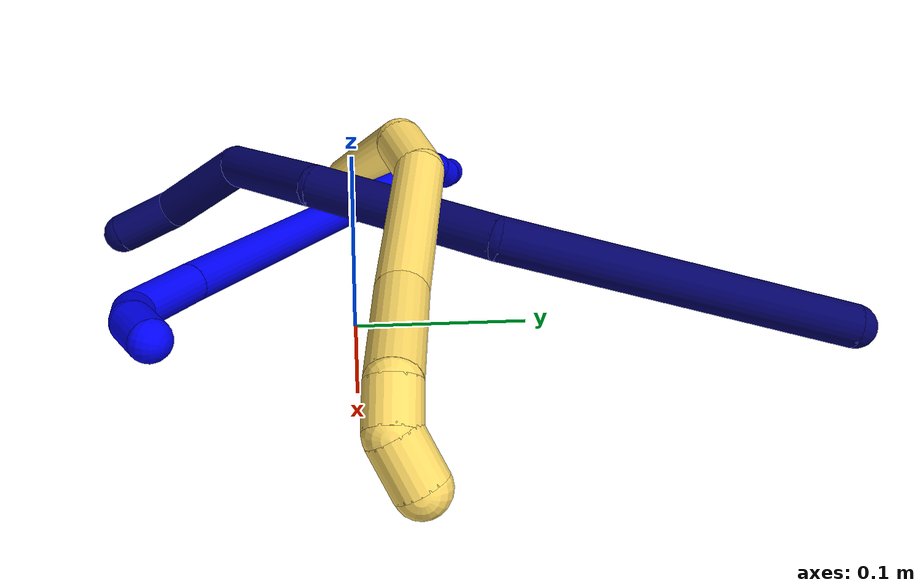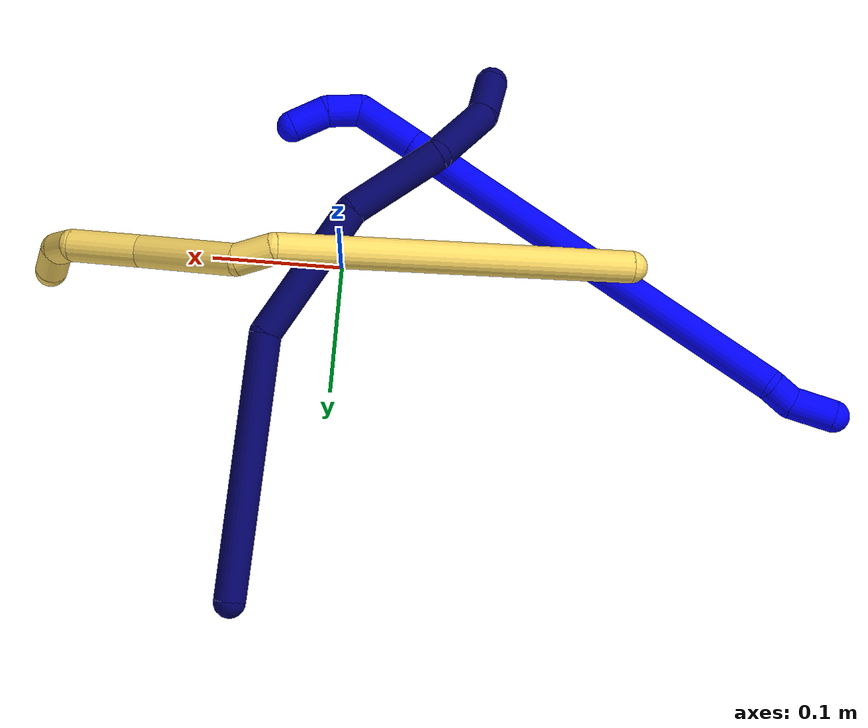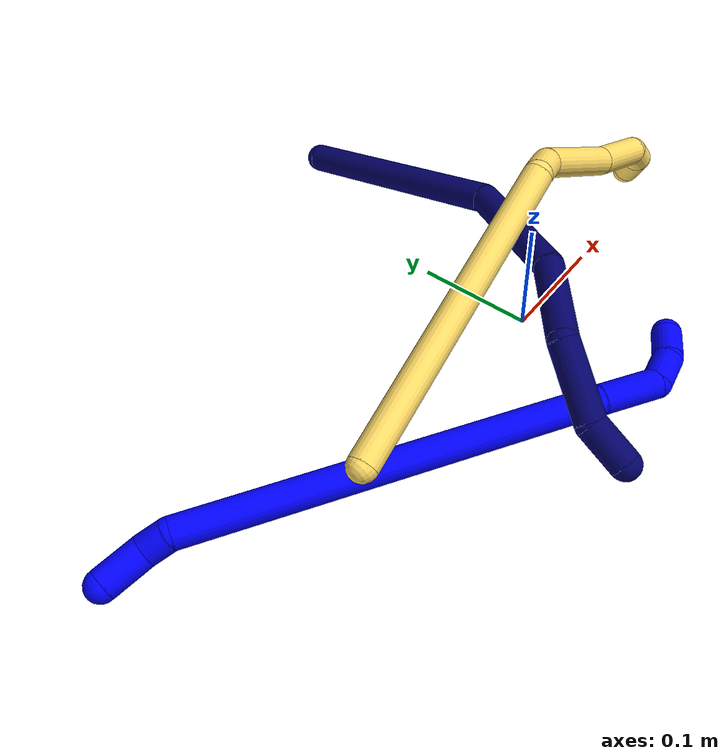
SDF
<sdf version="1.7">
 <world name="default">
  <model name="photoneo_s_sensor">
   <static>1</static>
   <pose>0 0 2 1.57079 1.57079 3.14159</pose>
   <link name="link">
    <inertial><mass>0.1</mass></inertial>
    <sensor name="sensor" type="depth">
     <update_rate>30</update_rate>
     <camera>
      <horizontal_fov>1.22</horizontal_fov>
      <image><width>1920</width><height>1200</height><format>B8G8R8</format></image>
      <clip><near>0.1</near><far>4</far></clip>
      <depth_camera><output>points</output></depth_camera>
     </camera>
     <plugin name="camera_plugin" filename="libgazebo_ros_depth_camera.so">
      <baseline>0.2</baseline>
      <alwaysOn>1</alwaysOn>
      <updateRate>0.0</updateRate>
      <cameraName>camera_ir</cameraName>
      <imageTopicName>/camera/color/image_raw</imageTopicName>
      <cameraInfoTopicName>/camera/color/camera_info</cameraInfoTopicName>
      <depthImageTopicName>/camera/depth/image_raw</depthImageTopicName>
      <depthImageCameraInfoTopicName>/camera/depth/camera_info</depthImageCameraInfoTopicName>
      <pointCloudTopicName>/camera/depth/points</pointCloudTopicName>
      <frameName>fr_optical</frameName>
      <pointCloudCutoff>0.1</pointCloudCutoff>
      <pointCloudCutoffMax>2.0</pointCloudCutoffMax>
      <distortionK1>0</distortionK1>
      <distortionK2>0</distortionK2>
      <distortionK3>0</distortionK3>
      <distortionT1>0</distortionT1>
      <distortionT2>0</distortionT2>
      <CxPrime>0</CxPrime>
      <Cx>0</Cx>
      <Cy>0</Cy>
      <focalLength>0</focalLength>
      <hackBaseline>0</hackBaseline>
     </plugin>
    </sensor>
   </link>
  </model>
  <model name="bin">
   <static>1</static>
   <link name="bottom">
    <collision name="collision-bottom">
     <pose>0 0 -0.01 0 -0 0</pose>
     <geometry><box><size>0.8 0.6 0.02</size></box></geometry>
     <surface>
      <friction><ode><mu>100</mu><mu2>100</mu2></ode></friction>
      <contact><collide_bitmask>65535</collide_bitmask></contact>
     </surface>
    </collision>
   </link>
   <link name="west_wall">
    <collision name="collision-west_wall">
     <pose>-0.41 0 0.1 0 -0 0</pose>
     <geometry><box><size>0.02 0.6 0.2</size></box></geometry>
     <surface>
      <friction><ode><mu>100</mu><mu2>100</mu2></ode></friction>
      <contact><collide_bitmask>65535</collide_bitmask></contact>
     </surface>
    </collision>
   </link>
   <link name="east_wall">
    <collision name="collision-east_wall">
     <pose>0.41 0 0.1 0 -0 0</pose>
     <geometry><box><size>0.02 0.6 0.2</size></box></geometry>
     <surface>
      <friction><ode><mu>100</mu><mu2>100</mu2></ode></friction>
      <contact><collide_bitmask>65535</collide_bitmask></contact>
     </surface>
    </collision>
   </link>
   <link name="south_wall">
    <collision name="collision-south_wall">
     <pose>0 -0.31 0.1 0 -0 0</pose>
     <geometry><box><size>0.8 0.02 0.2</size></box></geometry>
     <surface>
      <friction><ode><mu>100</mu><mu2>100</mu2></ode></friction>
      <contact><collide_bitmask>65535</collide_bitmask></contact>
     </surface>
    </collision>
   </link>
   <link name="north_wall">
    <collision name="collision-north_wall">
     <pose>0 0.31 0.1 0 -0 0</pose>
     <geometry><box><size>0.8 0.02 0.2</size></box></geometry>
     <surface>
      <friction><ode><mu>100</mu><mu2>100</mu2></ode></friction>
      <contact><collide_bitmask>65535</collide_bitmask></contact>
     </surface>
    </collision>
   </link>
  </model>
  <model name="1">
   <static>0</static>
   <link name="1">
    <collision name="collision-cylinder-e_1_1_4">
     <pose>-0.006791 0.004312 0.011949 -0.346343 -0.490933 0.087587</pose>
     <geometry><cylinder><radius>0.0125</radius><length>0.02881</length></cylinder></geometry>
     <surface>
      <friction><ode><mu>1.16</mu><mu2>1.16</mu2><slip1>0</slip1><slip2>0</slip2></ode></friction>
      <contact><ode><kp>1e+06</kp><kd>1</kd><max_vel>0</max_vel><min_depth>0.001</min_depth></ode></contact>
     </surface>
    </collision>
    <visual name="visual-cylinder-e_1_1_4">
     <pose>-0.006791 0.004312 0.011949 -0.346343 -0.490933 0.087587</pose>
     <geometry><cylinder><radius>0.0125</radius><length>0.02881</length></cylinder></geometry>
     <material><ambient>0 0 1 1</ambient></material>
    </visual>
    <collision name="collision-cylinder-e_2_4_5">
     <pose>-0.023801 0.013118 0.031541 -0.531467 -0.856198 0.247129</pose>
     <geometry><cylinder><radius>0.0125</radius><length>0.027055</length></cylinder></geometry>
     <surface>
      <friction><ode><mu>1.16</mu><mu2>1.16</mu2><slip1>0</slip1><slip2>0</slip2></ode></friction>
      <contact><ode><kp>1e+06</kp><kd>1</kd><max_vel>0</max_vel><min_depth>0.001</min_depth></ode></contact>
     </surface>
    </collision>
    <visual name="visual-cylinder-e_2_4_5">
     <pose>-0.023801 0.013118 0.031541 -0.531467 -0.856198 0.247129</pose>
     <geometry><cylinder><radius>0.0125</radius><length>0.027055</length></cylinder></geometry>
     <material><ambient>0 0 1 1</ambient></material>
    </visual>
    <collision name="collision-cylinder-e_3_5_6">
     <pose>-0.05311 0.034346 0.037773 -1.65483 -0.849306 0.914219</pose>
     <geometry><cylinder><radius>0.0125</radius><length>0.050854</length></cylinder></geometry>
     <surface>
      <friction><ode><mu>1.16</mu><mu2>1.16</mu2><slip1>0</slip1><slip2>0</slip2></ode></friction>
      <contact><ode><kp>1e+06</kp><kd>1</kd><max_vel>0</max_vel><min_depth>0.001</min_depth></ode></contact>
     </surface>
    </collision>
    <visual name="visual-cylinder-e_3_5_6">
     <pose>-0.05311 0.034346 0.037773 -1.65483 -0.849306 0.914219</pose>
     <geometry><cylinder><radius>0.0125</radius><length>0.050854</length></cylinder></geometry>
     <material><ambient>0 0 1 1</ambient></material>
    </visual>
    <collision name="collision-cylinder-e_4_6_7">
     <pose>-0.200667 0.159422 0.026115 -1.66511 -0.867985 0.942236</pose>
     <geometry><cylinder><radius>0.0125</radius><length>0.336727</length></cylinder></geometry>
     <surface>
      <friction><ode><mu>1.16</mu><mu2>1.16</mu2><slip1>0</slip1><slip2>0</slip2></ode></friction>
      <contact><ode><kp>1e+06</kp><kd>1</kd><max_vel>0</max_vel><min_depth>0.001</min_depth></ode></contact>
     </surface>
    </collision>
    <visual name="visual-cylinder-e_4_6_7">
     <pose>-0.200667 0.159422 0.026115 -1.66511 -0.867985 0.942236</pose>
     <geometry><cylinder><radius>0.0125</radius><length>0.336727</length></cylinder></geometry>
     <material><ambient>0 0 1 1</ambient></material>
    </visual>
    <collision name="collision-cylinder-e_5_7_8">
     <pose>-0.339546 0.269917 0.014636 -2.0896 -1.33692 1.8738</pose>
     <geometry><cylinder><radius>0.0125</radius><length>0.021408</length></cylinder></geometry>
     <surface>
      <friction><ode><mu>1.16</mu><mu2>1.16</mu2><slip1>0</slip1><slip2>0</slip2></ode></friction>
      <contact><ode><kp>1e+06</kp><kd>1</kd><max_vel>0</max_vel><min_depth>0.001</min_depth></ode></contact>
     </surface>
    </collision>
    <visual name="visual-cylinder-e_5_7_8">
     <pose>-0.339546 0.269917 0.014636 -2.0896 -1.33692 1.8738</pose>
     <geometry><cylinder><radius>0.0125</radius><length>0.021408</length></cylinder></geometry>
     <material><ambient>0 0 1 1</ambient></material>
    </visual>
    <collision name="collision-cylinder-e_6_8_2">
     <pose>-0.365245 0.279529 0.017823 -1.03611 -1.05496 0.641168</pose>
     <geometry><cylinder><radius>0.0125</radius><length>0.035146</length></cylinder></geometry>
     <surface>
      <friction><ode><mu>1.16</mu><mu2>1.16</mu2><slip1>0</slip1><slip2>0</slip2></ode></friction>
      <contact><ode><kp>1e+06</kp><kd>1</kd><max_vel>0</max_vel><min_depth>0.001</min_depth></ode></contact>
     </surface>
    </collision>
    <visual name="visual-cylinder-e_6_8_2">
     <pose>-0.365245 0.279529 0.017823 -1.03611 -1.05496 0.641168</pose>
     <geometry><cylinder><radius>0.0125</radius><length>0.035146</length></cylinder></geometry>
     <material><ambient>0 0 1 1</ambient></material>
    </visual>
    <collision name="collision-sphere-2">
     <pose>-0.380531 0.286987 0.02224 0 -0 0</pose>
     <geometry><sphere><radius>0.0125</radius></sphere></geometry>
     <surface>
      <friction><ode><mu>1.16</mu><mu2>1.16</mu2><slip1>0</slip1><slip2>0</slip2></ode></friction>
      <contact><ode><kp>1e+06</kp><kd>1</kd><max_vel>0</max_vel><min_depth>0.001</min_depth></ode></contact>
     </surface>
    </collision>
    <visual name="visual-sphere-2">
     <pose>-0.380531 0.286987 0.02224 0 -0 0</pose>
     <geometry><sphere><radius>0.0125</radius></sphere></geometry>
     <material><ambient>0 0 1 1</ambient></material>
    </visual>
    <collision name="collision-sphere-4">
     <pose>-0.013582 0.008625 0.023899 0 -0 0</pose>
     <geometry><sphere><radius>0.0125</radius></sphere></geometry>
     <surface>
      <friction><ode><mu>1.16</mu><mu2>1.16</mu2><slip1>0</slip1><slip2>0</slip2></ode></friction>
      <contact><ode><kp>1e+06</kp><kd>1</kd><max_vel>0</max_vel><min_depth>0.001</min_depth></ode></contact>
     </surface>
    </collision>
    <visual name="visual-sphere-4">
     <pose>-0.013582 0.008625 0.023899 0 -0 0</pose>
     <geometry><sphere><radius>0.0125</radius></sphere></geometry>
     <material><ambient>0 0 1 1</ambient></material>
    </visual>
    <collision name="collision-sphere-1">
     <geometry><sphere><radius>0.0125</radius></sphere></geometry>
     <surface>
      <friction><ode><mu>1.16</mu><mu2>1.16</mu2><slip1>0</slip1><slip2>0</slip2></ode></friction>
      <contact><ode><kp>1e+06</kp><kd>1</kd><max_vel>0</max_vel><min_depth>0.001</min_depth></ode></contact>
     </surface>
    </collision>
    <visual name="visual-sphere-1">
     <geometry><sphere><radius>0.0125</radius></sphere></geometry>
     <material><ambient>0 0 1 1</ambient></material>
    </visual>
    <collision name="collision-sphere-8">
     <pose>-0.349958 0.272071 0.013406 0 -0 0</pose>
     <geometry><sphere><radius>0.0125</radius></sphere></geometry>
     <surface>
      <friction><ode><mu>1.16</mu><mu2>1.16</mu2><slip1>0</slip1><slip2>0</slip2></ode></friction>
      <contact><ode><kp>1e+06</kp><kd>1</kd><max_vel>0</max_vel><min_depth>0.001</min_depth></ode></contact>
     </surface>
    </collision>
    <visual name="visual-sphere-8">
     <pose>-0.349958 0.272071 0.013406 0 -0 0</pose>
     <geometry><sphere><radius>0.0125</radius></sphere></geometry>
     <material><ambient>0 0 1 1</ambient></material>
    </visual>
    <collision name="collision-sphere-5">
     <pose>-0.034019 0.01761 0.039183 0 -0 0</pose>
     <geometry><sphere><radius>0.0125</radius></sphere></geometry>
     <surface>
      <friction><ode><mu>1.16</mu><mu2>1.16</mu2><slip1>0</slip1><slip2>0</slip2></ode></friction>
      <contact><ode><kp>1e+06</kp><kd>1</kd><max_vel>0</max_vel><min_depth>0.001</min_depth></ode></contact>
     </surface>
    </collision>
    <visual name="visual-sphere-5">
     <pose>-0.034019 0.01761 0.039183 0 -0 0</pose>
     <geometry><sphere><radius>0.0125</radius></sphere></geometry>
     <material><ambient>0 0 1 1</ambient></material>
    </visual>
    <collision name="collision-sphere-6">
     <pose>-0.072201 0.051081 0.036364 0 -0 0</pose>
     <geometry><sphere><radius>0.0125</radius></sphere></geometry>
     <surface>
      <friction><ode><mu>1.16</mu><mu2>1.16</mu2><slip1>0</slip1><slip2>0</slip2></ode></friction>
      <contact><ode><kp>1e+06</kp><kd>1</kd><max_vel>0</max_vel><min_depth>0.001</min_depth></ode></contact>
     </surface>
    </collision>
    <visual name="visual-sphere-6">
     <pose>-0.072201 0.051081 0.036364 0 -0 0</pose>
     <geometry><sphere><radius>0.0125</radius></sphere></geometry>
     <material><ambient>0 0 1 1</ambient></material>
    </visual>
    <collision name="collision-sphere-7">
     <pose>-0.329133 0.267763 0.015866 0 -0 0</pose>
     <geometry><sphere><radius>0.0125</radius></sphere></geometry>
     <surface>
      <friction><ode><mu>1.16</mu><mu2>1.16</mu2><slip1>0</slip1><slip2>0</slip2></ode></friction>
      <contact><ode><kp>1e+06</kp><kd>1</kd><max_vel>0</max_vel><min_depth>0.001</min_depth></ode></contact>
     </surface>
    </collision>
    <visual name="visual-sphere-7">
     <pose>-0.329133 0.267763 0.015866 0 -0 0</pose>
     <geometry><sphere><radius>0.0125</radius></sphere></geometry>
     <material><ambient>0 0 1 1</ambient></material>
    </visual>
    <inertial>
     <pose>-0.182433 0.14302 0.025704 0 -0 0</pose>
     <mass>0.5</mass>
     <inertia>
      <ixx>0.002876</ixx>
      <ixy>0</ixy>
      <ixz>0</ixz>
      <iyy>0.003507</iyy>
      <iyz>0</iyz>
      <izz>0.00039</izz>
     </inertia>
    </inertial>
   </link>
   <pose>0.047899 -0.108608 0.012496 1.39109 -0.645417 -0.367622</pose>
  </model>
  <model name="5">
   <static>0</static>
   <link name="5">
    <collision name="collision-cylinder-e_1_1_4">
     <pose>0.02386 0.016144 0.136829 -0.117444 0.171479 -0.010106</pose>
     <geometry><cylinder><radius>0.0125</radius><length>0.279658</length></cylinder></geometry>
     <surface>
      <friction><ode><mu>1.16</mu><mu2>1.16</mu2><slip1>0</slip1><slip2>0</slip2></ode></friction>
      <contact><ode><kp>1e+06</kp><kd>1</kd><max_vel>0</max_vel><min_depth>0.001</min_depth></ode></contact>
     </surface>
    </collision>
    <visual name="visual-cylinder-e_1_1_4">
     <pose>0.02386 0.016144 0.136829 -0.117444 0.171479 -0.010106</pose>
     <geometry><cylinder><radius>0.0125</radius><length>0.279658</length></cylinder></geometry>
     <material><ambient>1 0.858824 0.4 1</ambient></material>
    </visual>
    <collision name="collision-cylinder-e_2_4_5">
     <pose>0.054915 0.026688 0.28618 0.420558 0.483008 0.105046</pose>
     <geometry><cylinder><radius>0.0125</radius><length>0.03098</length></cylinder></geometry>
     <surface>
      <friction><ode><mu>1.16</mu><mu2>1.16</mu2><slip1>0</slip1><slip2>0</slip2></ode></friction>
      <contact><ode><kp>1e+06</kp><kd>1</kd><max_vel>0</max_vel><min_depth>0.001</min_depth></ode></contact>
     </surface>
    </collision>
    <visual name="visual-cylinder-e_2_4_5">
     <pose>0.054915 0.026688 0.28618 0.420558 0.483008 0.105046</pose>
     <geometry><cylinder><radius>0.0125</radius><length>0.03098</length></cylinder></geometry>
     <material><ambient>1 0.858824 0.4 1</ambient></material>
    </visual>
    <collision name="collision-cylinder-e_3_5_6">
     <pose>0.066588 -0.005251 0.332342 0.664266 0.104445 0.036053</pose>
     <geometry><cylinder><radius>0.0125</radius><length>0.085916</length></cylinder></geometry>
     <surface>
      <friction><ode><mu>1.16</mu><mu2>1.16</mu2><slip1>0</slip1><slip2>0</slip2></ode></friction>
      <contact><ode><kp>1e+06</kp><kd>1</kd><max_vel>0</max_vel><min_depth>0.001</min_depth></ode></contact>
     </surface>
    </collision>
    <visual name="visual-cylinder-e_3_5_6">
     <pose>0.066588 -0.005251 0.332342 0.664266 0.104445 0.036053</pose>
     <geometry><cylinder><radius>0.0125</radius><length>0.085916</length></cylinder></geometry>
     <material><ambient>1 0.858824 0.4 1</ambient></material>
    </visual>
    <collision name="collision-cylinder-e_4_6_7">
     <pose>0.074585 -0.045836 0.391056 0.516699 0.121412 0.03212</pose>
     <geometry><cylinder><radius>0.0125</radius><length>0.058105</length></cylinder></geometry>
     <surface>
      <friction><ode><mu>1.16</mu><mu2>1.16</mu2><slip1>0</slip1><slip2>0</slip2></ode></friction>
      <contact><ode><kp>1e+06</kp><kd>1</kd><max_vel>0</max_vel><min_depth>0.001</min_depth></ode></contact>
     </surface>
    </collision>
    <visual name="visual-cylinder-e_4_6_7">
     <pose>0.074585 -0.045836 0.391056 0.516699 0.121412 0.03212</pose>
     <geometry><cylinder><radius>0.0125</radius><length>0.058105</length></cylinder></geometry>
     <material><ambient>1 0.858824 0.4 1</ambient></material>
    </visual>
    <collision name="collision-cylinder-e_5_7_8">
     <pose>0.080757 -0.068933 0.421131 1.05641 0.25531 0.149511</pose>
     <geometry><cylinder><radius>0.0125</radius><length>0.021012</length></cylinder></geometry>
     <surface>
      <friction><ode><mu>1.16</mu><mu2>1.16</mu2><slip1>0</slip1><slip2>0</slip2></ode></friction>
      <contact><ode><kp>1e+06</kp><kd>1</kd><max_vel>0</max_vel><min_depth>0.001</min_depth></ode></contact>
     </surface>
    </collision>
    <visual name="visual-cylinder-e_5_7_8">
     <pose>0.080757 -0.068933 0.421131 1.05641 0.25531 0.149511</pose>
     <geometry><cylinder><radius>0.0125</radius><length>0.021012</length></cylinder></geometry>
     <material><ambient>1 0.858824 0.4 1</ambient></material>
    </visual>
    <collision name="collision-cylinder-e_6_8_2">
     <pose>0.091893 -0.086497 0.425834 1.60495 0.771643 0.795757</pose>
     <geometry><cylinder><radius>0.0125</radius><length>0.02433</length></cylinder></geometry>
     <surface>
      <friction><ode><mu>1.16</mu><mu2>1.16</mu2><slip1>0</slip1><slip2>0</slip2></ode></friction>
      <contact><ode><kp>1e+06</kp><kd>1</kd><max_vel>0</max_vel><min_depth>0.001</min_depth></ode></contact>
     </surface>
    </collision>
    <visual name="visual-cylinder-e_6_8_2">
     <pose>0.091893 -0.086497 0.425834 1.60495 0.771643 0.795757</pose>
     <geometry><cylinder><radius>0.0125</radius><length>0.02433</length></cylinder></geometry>
     <material><ambient>1 0.858824 0.4 1</ambient></material>
    </visual>
    <collision name="collision-sphere-2">
     <pose>0.100376 -0.095212 0.425537 0 -0 0</pose>
     <geometry><sphere><radius>0.0125</radius></sphere></geometry>
     <surface>
      <friction><ode><mu>1.16</mu><mu2>1.16</mu2><slip1>0</slip1><slip2>0</slip2></ode></friction>
      <contact><ode><kp>1e+06</kp><kd>1</kd><max_vel>0</max_vel><min_depth>0.001</min_depth></ode></contact>
     </surface>
    </collision>
    <visual name="visual-sphere-2">
     <pose>0.100376 -0.095212 0.425537 0 -0 0</pose>
     <geometry><sphere><radius>0.0125</radius></sphere></geometry>
     <material><ambient>1 0.858824 0.4 1</ambient></material>
    </visual>
    <collision name="collision-sphere-4">
     <pose>0.047721 0.032288 0.273658 0 -0 0</pose>
     <geometry><sphere><radius>0.0125</radius></sphere></geometry>
     <surface>
      <friction><ode><mu>1.16</mu><mu2>1.16</mu2><slip1>0</slip1><slip2>0</slip2></ode></friction>
      <contact><ode><kp>1e+06</kp><kd>1</kd><max_vel>0</max_vel><min_depth>0.001</min_depth></ode></contact>
     </surface>
    </collision>
    <visual name="visual-sphere-4">
     <pose>0.047721 0.032288 0.273658 0 -0 0</pose>
     <geometry><sphere><radius>0.0125</radius></sphere></geometry>
     <material><ambient>1 0.858824 0.4 1</ambient></material>
    </visual>
    <collision name="collision-sphere-1">
     <geometry><sphere><radius>0.0125</radius></sphere></geometry>
     <surface>
      <friction><ode><mu>1.16</mu><mu2>1.16</mu2><slip1>0</slip1><slip2>0</slip2></ode></friction>
      <contact><ode><kp>1e+06</kp><kd>1</kd><max_vel>0</max_vel><min_depth>0.001</min_depth></ode></contact>
     </surface>
    </collision>
    <visual name="visual-sphere-1">
     <geometry><sphere><radius>0.0125</radius></sphere></geometry>
     <material><ambient>1 0.858824 0.4 1</ambient></material>
    </visual>
    <collision name="collision-sphere-8">
     <pose>0.08341 -0.077783 0.426132 0 -0 0</pose>
     <geometry><sphere><radius>0.0125</radius></sphere></geometry>
     <surface>
      <friction><ode><mu>1.16</mu><mu2>1.16</mu2><slip1>0</slip1><slip2>0</slip2></ode></friction>
      <contact><ode><kp>1e+06</kp><kd>1</kd><max_vel>0</max_vel><min_depth>0.001</min_depth></ode></contact>
     </surface>
    </collision>
    <visual name="visual-sphere-8">
     <pose>0.08341 -0.077783 0.426132 0 -0 0</pose>
     <geometry><sphere><radius>0.0125</radius></sphere></geometry>
     <material><ambient>1 0.858824 0.4 1</ambient></material>
    </visual>
    <collision name="collision-sphere-5">
     <pose>0.062109 0.021087 0.298703 0 -0 0</pose>
     <geometry><sphere><radius>0.0125</radius></sphere></geometry>
     <surface>
      <friction><ode><mu>1.16</mu><mu2>1.16</mu2><slip1>0</slip1><slip2>0</slip2></ode></friction>
      <contact><ode><kp>1e+06</kp><kd>1</kd><max_vel>0</max_vel><min_depth>0.001</min_depth></ode></contact>
     </surface>
    </collision>
    <visual name="visual-sphere-5">
     <pose>0.062109 0.021087 0.298703 0 -0 0</pose>
     <geometry><sphere><radius>0.0125</radius></sphere></geometry>
     <material><ambient>1 0.858824 0.4 1</ambient></material>
    </visual>
    <collision name="collision-sphere-6">
     <pose>0.071066 -0.03159 0.365982 0 -0 0</pose>
     <geometry><sphere><radius>0.0125</radius></sphere></geometry>
     <surface>
      <friction><ode><mu>1.16</mu><mu2>1.16</mu2><slip1>0</slip1><slip2>0</slip2></ode></friction>
      <contact><ode><kp>1e+06</kp><kd>1</kd><max_vel>0</max_vel><min_depth>0.001</min_depth></ode></contact>
     </surface>
    </collision>
    <visual name="visual-sphere-6">
     <pose>0.071066 -0.03159 0.365982 0 -0 0</pose>
     <geometry><sphere><radius>0.0125</radius></sphere></geometry>
     <material><ambient>1 0.858824 0.4 1</ambient></material>
    </visual>
    <collision name="collision-sphere-7">
     <pose>0.078104 -0.060083 0.41613 0 -0 0</pose>
     <geometry><sphere><radius>0.0125</radius></sphere></geometry>
     <surface>
      <friction><ode><mu>1.16</mu><mu2>1.16</mu2><slip1>0</slip1><slip2>0</slip2></ode></friction>
      <contact><ode><kp>1e+06</kp><kd>1</kd><max_vel>0</max_vel><min_depth>0.001</min_depth></ode></contact>
     </surface>
    </collision>
    <visual name="visual-sphere-7">
     <pose>0.078104 -0.060083 0.41613 0 -0 0</pose>
     <geometry><sphere><radius>0.0125</radius></sphere></geometry>
     <material><ambient>1 0.858824 0.4 1</ambient></material>
    </visual>
    <inertial>
     <pose>0.044723 -0.002652 0.235232 0 -0 0</pose>
     <mass>0.5</mass>
     <inertia>
      <ixx>0.001881</ixx>
      <ixy>0</ixy>
      <ixz>0</ixz>
      <iyy>0.001866</iyy>
      <iyz>0</iyz>
      <izz>-0.000455</izz>
     </inertia>
    </inertial>
   </link>
   <pose>-0.222734 -0.005731 0.045037 1.36444 0.28035 1.42372</pose>
  </model>
  <model name="7">
   <static>0</static>
   <link name="7">
    <collision name="collision-cylinder-e_1_1_4">
     <pose>0.00428 0.017289 0.005911 -1.24138 0.230113 -0.164875</pose>
     <geometry><cylinder><radius>0.0125</radius><length>0.037533</length></cylinder></geometry>
     <surface>
      <friction><ode><mu>1.16</mu><mu2>1.16</mu2><slip1>0</slip1><slip2>0</slip2></ode></friction>
      <contact><ode><kp>1e+06</kp><kd>1</kd><max_vel>0</max_vel><min_depth>0.001</min_depth></ode></contact>
     </surface>
    </collision>
    <visual name="visual-cylinder-e_1_1_4">
     <pose>0.00428 0.017289 0.005911 -1.24138 0.230113 -0.164875</pose>
     <geometry><cylinder><radius>0.0125</radius><length>0.037533</length></cylinder></geometry>
     <material><ambient>0.003922 0 0.403922 1</ambient></material>
    </visual>
    <collision name="collision-cylinder-e_2_4_5">
     <pose>0.026312 0.061152 0.014838 -1.45776 0.585974 -0.52623</pose>
     <geometry><cylinder><radius>0.0125</radius><length>0.0642</length></cylinder></geometry>
     <surface>
      <friction><ode><mu>1.16</mu><mu2>1.16</mu2><slip1>0</slip1><slip2>0</slip2></ode></friction>
      <contact><ode><kp>1e+06</kp><kd>1</kd><max_vel>0</max_vel><min_depth>0.001</min_depth></ode></contact>
     </surface>
    </collision>
    <visual name="visual-cylinder-e_2_4_5">
     <pose>0.026312 0.061152 0.014838 -1.45776 0.585974 -0.52623</pose>
     <geometry><cylinder><radius>0.0125</radius><length>0.0642</length></cylinder></geometry>
     <material><ambient>0.003922 0 0.403922 1</ambient></material>
    </visual>
    <collision name="collision-cylinder-e_3_5_6">
     <pose>0.059372 0.118261 -0.001607 -2.13825 0.399969 -0.707984</pose>
     <geometry><cylinder><radius>0.0125</radius><length>0.078626</length></cylinder></geometry>
     <surface>
      <friction><ode><mu>1.16</mu><mu2>1.16</mu2><slip1>0</slip1><slip2>0</slip2></ode></friction>
      <contact><ode><kp>1e+06</kp><kd>1</kd><max_vel>0</max_vel><min_depth>0.001</min_depth></ode></contact>
     </surface>
    </collision>
    <visual name="visual-cylinder-e_3_5_6">
     <pose>0.059372 0.118261 -0.001607 -2.13825 0.399969 -0.707984</pose>
     <geometry><cylinder><radius>0.0125</radius><length>0.078626</length></cylinder></geometry>
     <material><ambient>0.003922 0 0.403922 1</ambient></material>
    </visual>
    <collision name="collision-cylinder-e_4_6_7">
     <pose>0.077722 0.201832 -0.042673 -1.9576 0.053074 -0.078903</pose>
     <geometry><cylinder><radius>0.0125</radius><length>0.114695</length></cylinder></geometry>
     <surface>
      <friction><ode><mu>1.16</mu><mu2>1.16</mu2><slip1>0</slip1><slip2>0</slip2></ode></friction>
      <contact><ode><kp>1e+06</kp><kd>1</kd><max_vel>0</max_vel><min_depth>0.001</min_depth></ode></contact>
     </surface>
    </collision>
    <visual name="visual-cylinder-e_4_6_7">
     <pose>0.077722 0.201832 -0.042673 -1.9576 0.053074 -0.078903</pose>
     <geometry><cylinder><radius>0.0125</radius><length>0.114695</length></cylinder></geometry>
     <material><ambient>0.003922 0 0.403922 1</ambient></material>
    </visual>
    <collision name="collision-cylinder-e_5_7_2">
     <pose>0.046037 0.350627 -0.075462 -1.68709 -0.345732 0.387466</pose>
     <geometry><cylinder><radius>0.0125</radius><length>0.204947</length></cylinder></geometry>
     <surface>
      <friction><ode><mu>1.16</mu><mu2>1.16</mu2><slip1>0</slip1><slip2>0</slip2></ode></friction>
      <contact><ode><kp>1e+06</kp><kd>1</kd><max_vel>0</max_vel><min_depth>0.001</min_depth></ode></contact>
     </surface>
    </collision>
    <visual name="visual-cylinder-e_5_7_2">
     <pose>0.046037 0.350627 -0.075462 -1.68709 -0.345732 0.387466</pose>
     <geometry><cylinder><radius>0.0125</radius><length>0.204947</length></cylinder></geometry>
     <material><ambient>0.003922 0 0.403922 1</ambient></material>
    </visual>
    <collision name="collision-sphere-2">
     <pose>0.011311 0.446386 -0.086648 0 -0 0</pose>
     <geometry><sphere><radius>0.0125</radius></sphere></geometry>
     <surface>
      <friction><ode><mu>1.16</mu><mu2>1.16</mu2><slip1>0</slip1><slip2>0</slip2></ode></friction>
      <contact><ode><kp>1e+06</kp><kd>1</kd><max_vel>0</max_vel><min_depth>0.001</min_depth></ode></contact>
     </surface>
    </collision>
    <visual name="visual-sphere-2">
     <pose>0.011311 0.446386 -0.086648 0 -0 0</pose>
     <geometry><sphere><radius>0.0125</radius></sphere></geometry>
     <material><ambient>0.003922 0 0.403922 1</ambient></material>
    </visual>
    <collision name="collision-sphere-7">
     <pose>0.080764 0.254868 -0.064275 0 -0 0</pose>
     <geometry><sphere><radius>0.0125</radius></sphere></geometry>
     <surface>
      <friction><ode><mu>1.16</mu><mu2>1.16</mu2><slip1>0</slip1><slip2>0</slip2></ode></friction>
      <contact><ode><kp>1e+06</kp><kd>1</kd><max_vel>0</max_vel><min_depth>0.001</min_depth></ode></contact>
     </surface>
    </collision>
    <visual name="visual-sphere-7">
     <pose>0.080764 0.254868 -0.064275 0 -0 0</pose>
     <geometry><sphere><radius>0.0125</radius></sphere></geometry>
     <material><ambient>0.003922 0 0.403922 1</ambient></material>
    </visual>
    <collision name="collision-sphere-6">
     <pose>0.07468 0.148796 -0.02107 0 -0 0</pose>
     <geometry><sphere><radius>0.0125</radius></sphere></geometry>
     <surface>
      <friction><ode><mu>1.16</mu><mu2>1.16</mu2><slip1>0</slip1><slip2>0</slip2></ode></friction>
      <contact><ode><kp>1e+06</kp><kd>1</kd><max_vel>0</max_vel><min_depth>0.001</min_depth></ode></contact>
     </surface>
    </collision>
    <visual name="visual-sphere-6">
     <pose>0.07468 0.148796 -0.02107 0 -0 0</pose>
     <geometry><sphere><radius>0.0125</radius></sphere></geometry>
     <material><ambient>0.003922 0 0.403922 1</ambient></material>
    </visual>
    <collision name="collision-sphere-5">
     <pose>0.044064 0.087727 0.017855 0 -0 0</pose>
     <geometry><sphere><radius>0.0125</radius></sphere></geometry>
     <surface>
      <friction><ode><mu>1.16</mu><mu2>1.16</mu2><slip1>0</slip1><slip2>0</slip2></ode></friction>
      <contact><ode><kp>1e+06</kp><kd>1</kd><max_vel>0</max_vel><min_depth>0.001</min_depth></ode></contact>
     </surface>
    </collision>
    <visual name="visual-sphere-5">
     <pose>0.044064 0.087727 0.017855 0 -0 0</pose>
     <geometry><sphere><radius>0.0125</radius></sphere></geometry>
     <material><ambient>0.003922 0 0.403922 1</ambient></material>
    </visual>
    <collision name="collision-sphere-1">
     <geometry><sphere><radius>0.0125</radius></sphere></geometry>
     <surface>
      <friction><ode><mu>1.16</mu><mu2>1.16</mu2><slip1>0</slip1><slip2>0</slip2></ode></friction>
      <contact><ode><kp>1e+06</kp><kd>1</kd><max_vel>0</max_vel><min_depth>0.001</min_depth></ode></contact>
     </surface>
    </collision>
    <visual name="visual-sphere-1">
     <geometry><sphere><radius>0.0125</radius></sphere></geometry>
     <material><ambient>0.003922 0 0.403922 1</ambient></material>
    </visual>
    <collision name="collision-sphere-4">
     <pose>0.008561 0.034578 0.011821 0 -0 0</pose>
     <geometry><sphere><radius>0.0125</radius></sphere></geometry>
     <surface>
      <friction><ode><mu>1.16</mu><mu2>1.16</mu2><slip1>0</slip1><slip2>0</slip2></ode></friction>
      <contact><ode><kp>1e+06</kp><kd>1</kd><max_vel>0</max_vel><min_depth>0.001</min_depth></ode></contact>
     </surface>
    </collision>
    <visual name="visual-sphere-4">
     <pose>0.008561 0.034578 0.011821 0 -0 0</pose>
     <geometry><sphere><radius>0.0125</radius></sphere></geometry>
     <material><ambient>0.003922 0 0.403922 1</ambient></material>
    </visual>
    <inertial>
     <pose>0.049735 0.217765 -0.038624 0 -0 0</pose>
     <mass>0.5</mass>
     <inertia>
      <ixx>0.001026</ixx>
      <ixy>0</ixy>
      <ixz>0</ixz>
      <iyy>0.000214</iyy>
      <iyz>0</iyz>
      <izz>-0.000658</izz>
     </inertia>
    </inertial>
   </link>
   <pose>-0.103689 -0.149746 0.032986 0.097633 -0.804238 -0.283255</pose>
  </model>
 </world>
</sdf>
